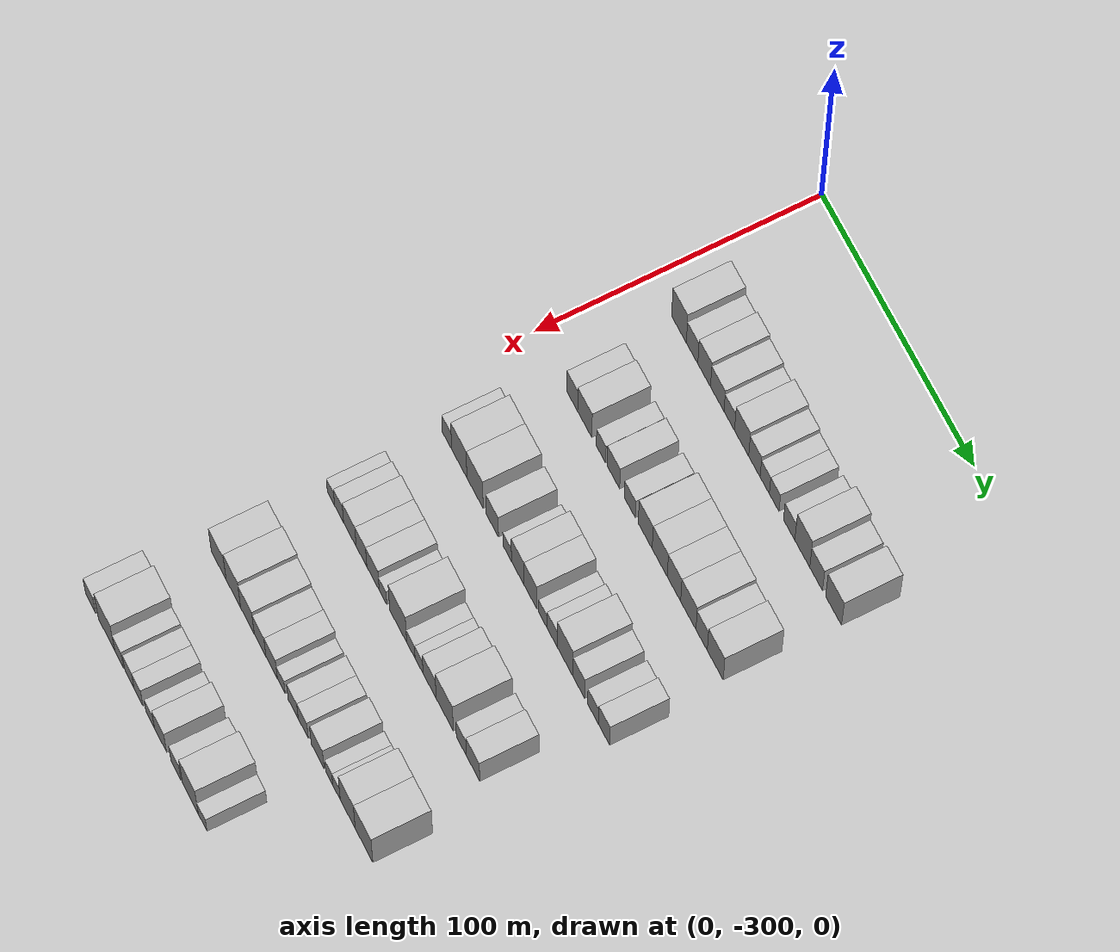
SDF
<sdf version="1.6">
 <world name="default">
  <model name="building_39">
   <static>1</static>
   <pose>50.0000 -280.5649 0 0.000000 0.000000 0.000000</pose>
   <link name="link">
    <pose>0 0 12.00 0 0 0</pose>
    <collision name="collision"><geometry><box><size>20.0000 9.8478 24.0000</size></box></geometry></collision>
    <visual name="visual">
     <cast_shadows>0</cast_shadows>
     <geometry><box><size>20.0000 9.8478 24.0000</size></box></geometry>
     <material>
      <script>
       <uri>model://HANNAS_wall/materials/scripts</uri>
       <uri>model://HANNAS_wall/materials/textures</uri>
       <name>vrc/HANNAS_wall</name>
      </script>
     </material>
    </visual>
   </link>
  </model>
  <model name="building_40">
   <static>1</static>
   <pose>50.0000 -271.7968 0 0.000000 0.000000 0.000000</pose>
   <link name="link">
    <pose>0 0 9.00 0 0 0</pose>
    <collision name="collision"><geometry><box><size>20.0000 7.6885 18.0000</size></box></geometry></collision>
    <visual name="visual">
     <cast_shadows>0</cast_shadows>
     <geometry><box><size>20.0000 7.6885 18.0000</size></box></geometry>
     <material>
      <script>
       <uri>model://HANNAS_wall/materials/scripts</uri>
       <uri>model://HANNAS_wall/materials/textures</uri>
       <name>vrc/HANNAS_wall</name>
      </script>
     </material>
    </visual>
   </link>
  </model>
  <model name="building_41">
   <static>1</static>
   <pose>50.0000 -263.7058 0 0.000000 0.000000 0.000000</pose>
   <link name="link">
    <pose>0 0 10.50 0 0 0</pose>
    <collision name="collision"><geometry><box><size>20.0000 8.4936 21.0000</size></box></geometry></collision>
    <visual name="visual">
     <cast_shadows>0</cast_shadows>
     <geometry><box><size>20.0000 8.4936 21.0000</size></box></geometry>
     <material>
      <script>
       <uri>model://HANNAS_wall/materials/scripts</uri>
       <uri>model://HANNAS_wall/materials/textures</uri>
       <name>vrc/HANNAS_wall</name>
      </script>
     </material>
    </visual>
   </link>
  </model>
  <model name="building_42">
   <static>1</static>
   <pose>50.0000 -254.9715 0 0.000000 0.000000 0.000000</pose>
   <link name="link">
    <pose>0 0 9.00 0 0 0</pose>
    <collision name="collision"><geometry><box><size>20.0000 8.9749 18.0000</size></box></geometry></collision>
    <visual name="visual">
     <cast_shadows>0</cast_shadows>
     <geometry><box><size>20.0000 8.9749 18.0000</size></box></geometry>
     <material>
      <script>
       <uri>model://HANNAS_wall/materials/scripts</uri>
       <uri>model://HANNAS_wall/materials/textures</uri>
       <name>vrc/HANNAS_wall</name>
      </script>
     </material>
    </visual>
   </link>
  </model>
  <model name="building_43">
   <static>1</static>
   <pose>50.0000 -246.9806 0 0.000000 0.000000 0.000000</pose>
   <link name="link">
    <pose>0 0 7.50 0 0 0</pose>
    <collision name="collision"><geometry><box><size>20.0000 7.0068 15.0000</size></box></geometry></collision>
    <visual name="visual">
     <cast_shadows>0</cast_shadows>
     <geometry><box><size>20.0000 7.0068 15.0000</size></box></geometry>
     <material>
      <script>
       <uri>model://HANNAS_wall/materials/scripts</uri>
       <uri>model://HANNAS_wall/materials/textures</uri>
       <name>vrc/HANNAS_wall</name>
      </script>
     </material>
    </visual>
   </link>
  </model>
  <model name="building_44">
   <static>1</static>
   <pose>50.0000 -238.7881 0 0.000000 0.000000 0.000000</pose>
   <link name="link">
    <pose>0 0 10.50 0 0 0</pose>
    <collision name="collision"><geometry><box><size>20.0000 9.3783 21.0000</size></box></geometry></collision>
    <visual name="visual">
     <cast_shadows>0</cast_shadows>
     <geometry><box><size>20.0000 9.3783 21.0000</size></box></geometry>
     <material>
      <script>
       <uri>model://HANNAS_wall/materials/scripts</uri>
       <uri>model://HANNAS_wall/materials/textures</uri>
       <name>vrc/HANNAS_wall</name>
      </script>
     </material>
    </visual>
   </link>
  </model>
  <model name="building_45">
   <static>1</static>
   <pose>50.0000 -230.3135 0 0.000000 0.000000 0.000000</pose>
   <link name="link">
    <pose>0 0 9.00 0 0 0</pose>
    <collision name="collision"><geometry><box><size>20.0000 7.5708 18.0000</size></box></geometry></collision>
    <visual name="visual">
     <cast_shadows>0</cast_shadows>
     <geometry><box><size>20.0000 7.5708 18.0000</size></box></geometry>
     <material>
      <script>
       <uri>model://HANNAS_wall/materials/scripts</uri>
       <uri>model://HANNAS_wall/materials/textures</uri>
       <name>vrc/HANNAS_wall</name>
      </script>
     </material>
    </visual>
   </link>
  </model>
  <model name="building_46">
   <static>1</static>
   <pose>50.0000 -223.4742 0 0.000000 0.000000 0.000000</pose>
   <link name="link">
    <pose>0 0 7.50 0 0 0</pose>
    <collision name="collision"><geometry><box><size>20.0000 6.1078 15.0000</size></box></geometry></collision>
    <visual name="visual">
     <cast_shadows>0</cast_shadows>
     <geometry><box><size>20.0000 6.1078 15.0000</size></box></geometry>
     <material>
      <script>
       <uri>model://HANNAS_wall/materials/scripts</uri>
       <uri>model://HANNAS_wall/materials/textures</uri>
       <name>vrc/HANNAS_wall</name>
      </script>
     </material>
    </visual>
   </link>
  </model>
  <model name="building_47">
   <static>1</static>
   <pose>50.0000 -217.2351 0 0.000000 0.000000 0.000000</pose>
   <link name="link">
    <pose>0 0 7.50 0 0 0</pose>
    <collision name="collision"><geometry><box><size>20.0000 6.3704 15.0000</size></box></geometry></collision>
    <visual name="visual">
     <cast_shadows>0</cast_shadows>
     <geometry><box><size>20.0000 6.3704 15.0000</size></box></geometry>
     <material>
      <script>
       <uri>model://HANNAS_wall/materials/scripts</uri>
       <uri>model://HANNAS_wall/materials/textures</uri>
       <name>vrc/HANNAS_wall</name>
      </script>
     </material>
    </visual>
   </link>
  </model>
  <model name="building_48">
   <static>1</static>
   <pose>50.0000 -207.3468 0 0.000000 0.000000 0.000000</pose>
   <link name="link">
    <pose>0 0 7.50 0 0 0</pose>
    <collision name="collision"><geometry><box><size>20.0000 7.4062 15.0000</size></box></geometry></collision>
    <visual name="visual">
     <cast_shadows>0</cast_shadows>
     <geometry><box><size>20.0000 7.4062 15.0000</size></box></geometry>
     <material>
      <script>
       <uri>model://HANNAS_wall/materials/scripts</uri>
       <uri>model://HANNAS_wall/materials/textures</uri>
       <name>vrc/HANNAS_wall</name>
      </script>
     </material>
    </visual>
   </link>
  </model>
  <model name="building_49">
   <static>1</static>
   <pose>50.0000 -198.7329 0 0.000000 0.000000 0.000000</pose>
   <link name="link">
    <pose>0 0 12.00 0 0 0</pose>
    <collision name="collision"><geometry><box><size>20.0000 9.8217 24.0000</size></box></geometry></collision>
    <visual name="visual">
     <cast_shadows>0</cast_shadows>
     <geometry><box><size>20.0000 9.8217 24.0000</size></box></geometry>
     <material>
      <script>
       <uri>model://HANNAS_wall/materials/scripts</uri>
       <uri>model://HANNAS_wall/materials/textures</uri>
       <name>vrc/HANNAS_wall</name>
      </script>
     </material>
    </visual>
   </link>
  </model>
  <model name="building_50">
   <static>1</static>
   <pose>50.0000 -189.6635 0 0.000000 0.000000 0.000000</pose>
   <link name="link">
    <pose>0 0 9.00 0 0 0</pose>
    <collision name="collision"><geometry><box><size>20.0000 8.3170 18.0000</size></box></geometry></collision>
    <visual name="visual">
     <cast_shadows>0</cast_shadows>
     <geometry><box><size>20.0000 8.3170 18.0000</size></box></geometry>
     <material>
      <script>
       <uri>model://HANNAS_wall/materials/scripts</uri>
       <uri>model://HANNAS_wall/materials/textures</uri>
       <name>vrc/HANNAS_wall</name>
      </script>
     </material>
    </visual>
   </link>
  </model>
  <model name="building_51">
   <static>1</static>
   <pose>50.0000 -178.3071 0 0.000000 0.000000 0.000000</pose>
   <link name="link">
    <pose>0 0 10.50 0 0 0</pose>
    <collision name="collision"><geometry><box><size>20.0000 10.3958 21.0000</size></box></geometry></collision>
    <visual name="visual">
     <cast_shadows>0</cast_shadows>
     <geometry><box><size>20.0000 10.3958 21.0000</size></box></geometry>
     <material>
      <script>
       <uri>model://HANNAS_wall/materials/scripts</uri>
       <uri>model://HANNAS_wall/materials/textures</uri>
       <name>vrc/HANNAS_wall</name>
      </script>
     </material>
    </visual>
   </link>
  </model>
  <model name="building_174">
   <static>1</static>
   <pose>90.0000 -274.4866 0 0.000000 0.000000 0.000000</pose>
   <link name="link">
    <pose>0 0 9.00 0 0 0</pose>
    <collision name="collision"><geometry><box><size>20.0000 7.3167 18.0000</size></box></geometry></collision>
    <visual name="visual">
     <cast_shadows>0</cast_shadows>
     <geometry><box><size>20.0000 7.3167 18.0000</size></box></geometry>
     <material>
      <script>
       <uri>model://HANNAS_wall/materials/scripts</uri>
       <uri>model://HANNAS_wall/materials/textures</uri>
       <name>vrc/HANNAS_wall</name>
      </script>
     </material>
    </visual>
   </link>
  </model>
  <model name="building_175">
   <static>1</static>
   <pose>90.0000 -266.0101 0 0.000000 0.000000 0.000000</pose>
   <link name="link">
    <pose>0 0 10.50 0 0 0</pose>
    <collision name="collision"><geometry><box><size>20.0000 9.6361 21.0000</size></box></geometry></collision>
    <visual name="visual">
     <cast_shadows>0</cast_shadows>
     <geometry><box><size>20.0000 9.6361 21.0000</size></box></geometry>
     <material>
      <script>
       <uri>model://HANNAS_wall/materials/scripts</uri>
       <uri>model://HANNAS_wall/materials/textures</uri>
       <name>vrc/HANNAS_wall</name>
      </script>
     </material>
    </visual>
   </link>
  </model>
  <model name="building_176">
   <static>1</static>
   <pose>90.0000 -255.0600 0 0.000000 0.000000 0.000000</pose>
   <link name="link">
    <pose>0 0 7.50 0 0 0</pose>
    <collision name="collision"><geometry><box><size>20.0000 6.2642 15.0000</size></box></geometry></collision>
    <visual name="visual">
     <cast_shadows>0</cast_shadows>
     <geometry><box><size>20.0000 6.2642 15.0000</size></box></geometry>
     <material>
      <script>
       <uri>model://HANNAS_wall/materials/scripts</uri>
       <uri>model://HANNAS_wall/materials/textures</uri>
       <name>vrc/HANNAS_wall</name>
      </script>
     </material>
    </visual>
   </link>
  </model>
  <model name="building_177">
   <static>1</static>
   <pose>90.0000 -246.7396 0 0.000000 0.000000 0.000000</pose>
   <link name="link">
    <pose>0 0 9.00 0 0 0</pose>
    <collision name="collision"><geometry><box><size>20.0000 8.3766 18.0000</size></box></geometry></collision>
    <visual name="visual">
     <cast_shadows>0</cast_shadows>
     <geometry><box><size>20.0000 8.3766 18.0000</size></box></geometry>
     <material>
      <script>
       <uri>model://HANNAS_wall/materials/scripts</uri>
       <uri>model://HANNAS_wall/materials/textures</uri>
       <name>vrc/HANNAS_wall</name>
      </script>
     </material>
    </visual>
   </link>
  </model>
  <model name="building_178">
   <static>1</static>
   <pose>90.0000 -235.8291 0 0.000000 0.000000 0.000000</pose>
   <link name="link">
    <pose>0 0 7.50 0 0 0</pose>
    <collision name="collision"><geometry><box><size>20.0000 7.4444 15.0000</size></box></geometry></collision>
    <visual name="visual">
     <cast_shadows>0</cast_shadows>
     <geometry><box><size>20.0000 7.4444 15.0000</size></box></geometry>
     <material>
      <script>
       <uri>model://HANNAS_wall/materials/scripts</uri>
       <uri>model://HANNAS_wall/materials/textures</uri>
       <name>vrc/HANNAS_wall</name>
      </script>
     </material>
    </visual>
   </link>
  </model>
  <model name="building_179">
   <static>1</static>
   <pose>90.0000 -225.4730 0 0.000000 0.000000 0.000000</pose>
   <link name="link">
    <pose>0 0 10.50 0 0 0</pose>
    <collision name="collision"><geometry><box><size>20.0000 9.2677 21.0000</size></box></geometry></collision>
    <visual name="visual">
     <cast_shadows>0</cast_shadows>
     <geometry><box><size>20.0000 9.2677 21.0000</size></box></geometry>
     <material>
      <script>
       <uri>model://HANNAS_wall/materials/scripts</uri>
       <uri>model://HANNAS_wall/materials/textures</uri>
       <name>vrc/HANNAS_wall</name>
      </script>
     </material>
    </visual>
   </link>
  </model>
  <model name="building_180">
   <static>1</static>
   <pose>90.0000 -215.8219 0 0.000000 0.000000 0.000000</pose>
   <link name="link">
    <pose>0 0 10.50 0 0 0</pose>
    <collision name="collision"><geometry><box><size>20.0000 10.0346 21.0000</size></box></geometry></collision>
    <visual name="visual">
     <cast_shadows>0</cast_shadows>
     <geometry><box><size>20.0000 10.0346 21.0000</size></box></geometry>
     <material>
      <script>
       <uri>model://HANNAS_wall/materials/scripts</uri>
       <uri>model://HANNAS_wall/materials/textures</uri>
       <name>vrc/HANNAS_wall</name>
      </script>
     </material>
    </visual>
   </link>
  </model>
  <model name="building_181">
   <static>1</static>
   <pose>90.0000 -206.3637 0 0.000000 0.000000 0.000000</pose>
   <link name="link">
    <pose>0 0 10.50 0 0 0</pose>
    <collision name="collision"><geometry><box><size>20.0000 8.8818 21.0000</size></box></geometry></collision>
    <visual name="visual">
     <cast_shadows>0</cast_shadows>
     <geometry><box><size>20.0000 8.8818 21.0000</size></box></geometry>
     <material>
      <script>
       <uri>model://HANNAS_wall/materials/scripts</uri>
       <uri>model://HANNAS_wall/materials/textures</uri>
       <name>vrc/HANNAS_wall</name>
      </script>
     </material>
    </visual>
   </link>
  </model>
  <model name="building_182">
   <static>1</static>
   <pose>90.0000 -196.8676 0 0.000000 0.000000 0.000000</pose>
   <link name="link">
    <pose>0 0 10.50 0 0 0</pose>
    <collision name="collision"><geometry><box><size>20.0000 10.1104 21.0000</size></box></geometry></collision>
    <visual name="visual">
     <cast_shadows>0</cast_shadows>
     <geometry><box><size>20.0000 10.1104 21.0000</size></box></geometry>
     <material>
      <script>
       <uri>model://HANNAS_wall/materials/scripts</uri>
       <uri>model://HANNAS_wall/materials/textures</uri>
       <name>vrc/HANNAS_wall</name>
      </script>
     </material>
    </visual>
   </link>
  </model>
  <model name="building_183">
   <static>1</static>
   <pose>90.0000 -188.0851 0 0.000000 0.000000 0.000000</pose>
   <link name="link">
    <pose>0 0 9.00 0 0 0</pose>
    <collision name="collision"><geometry><box><size>20.0000 7.4547 18.0000</size></box></geometry></collision>
    <visual name="visual">
     <cast_shadows>0</cast_shadows>
     <geometry><box><size>20.0000 7.4547 18.0000</size></box></geometry>
     <material>
      <script>
       <uri>model://HANNAS_wall/materials/scripts</uri>
       <uri>model://HANNAS_wall/materials/textures</uri>
       <name>vrc/HANNAS_wall</name>
      </script>
     </material>
    </visual>
   </link>
  </model>
  <model name="building_184">
   <static>1</static>
   <pose>90.0000 -179.1207 0 0.000000 0.000000 0.000000</pose>
   <link name="link">
    <pose>0 0 10.50 0 0 0</pose>
    <collision name="collision"><geometry><box><size>20.0000 10.4742 21.0000</size></box></geometry></collision>
    <visual name="visual">
     <cast_shadows>0</cast_shadows>
     <geometry><box><size>20.0000 10.4742 21.0000</size></box></geometry>
     <material>
      <script>
       <uri>model://HANNAS_wall/materials/scripts</uri>
       <uri>model://HANNAS_wall/materials/textures</uri>
       <name>vrc/HANNAS_wall</name>
      </script>
     </material>
    </visual>
   </link>
  </model>
  <model name="building_301">
   <static>1</static>
   <pose>130.0000 -280.3626 0 0.000000 0.000000 0.000000</pose>
   <link name="link">
    <pose>0 0 7.50 0 0 0</pose>
    <collision name="collision"><geometry><box><size>20.0000 6.3171 15.0000</size></box></geometry></collision>
    <visual name="visual">
     <cast_shadows>0</cast_shadows>
     <geometry><box><size>20.0000 6.3171 15.0000</size></box></geometry>
     <material>
      <script>
       <uri>model://HANNAS_wall/materials/scripts</uri>
       <uri>model://HANNAS_wall/materials/textures</uri>
       <name>vrc/HANNAS_wall</name>
      </script>
     </material>
    </visual>
   </link>
  </model>
  <model name="building_302">
   <static>1</static>
   <pose>130.0000 -272.0111 0 0.000000 0.000000 0.000000</pose>
   <link name="link">
    <pose>0 0 12.00 0 0 0</pose>
    <collision name="collision"><geometry><box><size>20.0000 10.3860 24.0000</size></box></geometry></collision>
    <visual name="visual">
     <cast_shadows>0</cast_shadows>
     <geometry><box><size>20.0000 10.3860 24.0000</size></box></geometry>
     <material>
      <script>
       <uri>model://HANNAS_wall/materials/scripts</uri>
       <uri>model://HANNAS_wall/materials/textures</uri>
       <name>vrc/HANNAS_wall</name>
      </script>
     </material>
    </visual>
   </link>
  </model>
  <model name="building_303">
   <static>1</static>
   <pose>130.0000 -261.2895 0 0.000000 0.000000 0.000000</pose>
   <link name="link">
    <pose>0 0 12.00 0 0 0</pose>
    <collision name="collision"><geometry><box><size>20.0000 11.0572 24.0000</size></box></geometry></collision>
    <visual name="visual">
     <cast_shadows>0</cast_shadows>
     <geometry><box><size>20.0000 11.0572 24.0000</size></box></geometry>
     <material>
      <script>
       <uri>model://HANNAS_wall/materials/scripts</uri>
       <uri>model://HANNAS_wall/materials/textures</uri>
       <name>vrc/HANNAS_wall</name>
      </script>
     </material>
    </visual>
   </link>
  </model>
  <model name="building_304">
   <static>1</static>
   <pose>130.0000 -249.5803 0 0.000000 0.000000 0.000000</pose>
   <link name="link">
    <pose>0 0 9.00 0 0 0</pose>
    <collision name="collision"><geometry><box><size>20.0000 8.3613 18.0000</size></box></geometry></collision>
    <visual name="visual">
     <cast_shadows>0</cast_shadows>
     <geometry><box><size>20.0000 8.3613 18.0000</size></box></geometry>
     <material>
      <script>
       <uri>model://HANNAS_wall/materials/scripts</uri>
       <uri>model://HANNAS_wall/materials/textures</uri>
       <name>vrc/HANNAS_wall</name>
      </script>
     </material>
    </visual>
   </link>
  </model>
  <model name="building_305">
   <static>1</static>
   <pose>130.0000 -239.5220 0 0.000000 0.000000 0.000000</pose>
   <link name="link">
    <pose>0 0 6.00 0 0 0</pose>
    <collision name="collision"><geometry><box><size>20.0000 5.7553 12.0000</size></box></geometry></collision>
    <visual name="visual">
     <cast_shadows>0</cast_shadows>
     <geometry><box><size>20.0000 5.7553 12.0000</size></box></geometry>
     <material>
      <script>
       <uri>model://HANNAS_wall/materials/scripts</uri>
       <uri>model://HANNAS_wall/materials/textures</uri>
       <name>vrc/HANNAS_wall</name>
      </script>
     </material>
    </visual>
   </link>
  </model>
  <model name="building_306">
   <static>1</static>
   <pose>130.0000 -232.4373 0 0.000000 0.000000 0.000000</pose>
   <link name="link">
    <pose>0 0 10.50 0 0 0</pose>
    <collision name="collision"><geometry><box><size>20.0000 8.4140 21.0000</size></box></geometry></collision>
    <visual name="visual">
     <cast_shadows>0</cast_shadows>
     <geometry><box><size>20.0000 8.4140 21.0000</size></box></geometry>
     <material>
      <script>
       <uri>model://HANNAS_wall/materials/scripts</uri>
       <uri>model://HANNAS_wall/materials/textures</uri>
       <name>vrc/HANNAS_wall</name>
      </script>
     </material>
    </visual>
   </link>
  </model>
  <model name="building_307">
   <static>1</static>
   <pose>130.0000 -223.8336 0 0.000000 0.000000 0.000000</pose>
   <link name="link">
    <pose>0 0 10.50 0 0 0</pose>
    <collision name="collision"><geometry><box><size>20.0000 8.7934 21.0000</size></box></geometry></collision>
    <visual name="visual">
     <cast_shadows>0</cast_shadows>
     <geometry><box><size>20.0000 8.7934 21.0000</size></box></geometry>
     <material>
      <script>
       <uri>model://HANNAS_wall/materials/scripts</uri>
       <uri>model://HANNAS_wall/materials/textures</uri>
       <name>vrc/HANNAS_wall</name>
      </script>
     </material>
    </visual>
   </link>
  </model>
  <model name="building_308">
   <static>1</static>
   <pose>130.0000 -215.6050 0 0.000000 0.000000 0.000000</pose>
   <link name="link">
    <pose>0 0 6.00 0 0 0</pose>
    <collision name="collision"><geometry><box><size>20.0000 5.6639 12.0000</size></box></geometry></collision>
    <visual name="visual">
     <cast_shadows>0</cast_shadows>
     <geometry><box><size>20.0000 5.6639 12.0000</size></box></geometry>
     <material>
      <script>
       <uri>model://HANNAS_wall/materials/scripts</uri>
       <uri>model://HANNAS_wall/materials/textures</uri>
       <name>vrc/HANNAS_wall</name>
      </script>
     </material>
    </visual>
   </link>
  </model>
  <model name="building_309">
   <static>1</static>
   <pose>130.0000 -209.3810 0 0.000000 0.000000 0.000000</pose>
   <link name="link">
    <pose>0 0 7.50 0 0 0</pose>
    <collision name="collision"><geometry><box><size>20.0000 6.7841 15.0000</size></box></geometry></collision>
    <visual name="visual">
     <cast_shadows>0</cast_shadows>
     <geometry><box><size>20.0000 6.7841 15.0000</size></box></geometry>
     <material>
      <script>
       <uri>model://HANNAS_wall/materials/scripts</uri>
       <uri>model://HANNAS_wall/materials/textures</uri>
       <name>vrc/HANNAS_wall</name>
      </script>
     </material>
    </visual>
   </link>
  </model>
  <model name="building_310">
   <static>1</static>
   <pose>130.0000 -200.7105 0 0.000000 0.000000 0.000000</pose>
   <link name="link">
    <pose>0 0 12.00 0 0 0</pose>
    <collision name="collision"><geometry><box><size>20.0000 10.5569 24.0000</size></box></geometry></collision>
    <visual name="visual">
     <cast_shadows>0</cast_shadows>
     <geometry><box><size>20.0000 10.5569 24.0000</size></box></geometry>
     <material>
      <script>
       <uri>model://HANNAS_wall/materials/scripts</uri>
       <uri>model://HANNAS_wall/materials/textures</uri>
       <name>vrc/HANNAS_wall</name>
      </script>
     </material>
    </visual>
   </link>
  </model>
  <model name="building_311">
   <static>1</static>
   <pose>130.0000 -191.5314 0 0.000000 0.000000 0.000000</pose>
   <link name="link">
    <pose>0 0 9.00 0 0 0</pose>
    <collision name="collision"><geometry><box><size>20.0000 7.8012 18.0000</size></box></geometry></collision>
    <visual name="visual">
     <cast_shadows>0</cast_shadows>
     <geometry><box><size>20.0000 7.8012 18.0000</size></box></geometry>
     <material>
      <script>
       <uri>model://HANNAS_wall/materials/scripts</uri>
       <uri>model://HANNAS_wall/materials/textures</uri>
       <name>vrc/HANNAS_wall</name>
      </script>
     </material>
    </visual>
   </link>
  </model>
  <model name="building_312">
   <static>1</static>
   <pose>130.0000 -182.0263 0 0.000000 0.000000 0.000000</pose>
   <link name="link">
    <pose>0 0 7.50 0 0 0</pose>
    <collision name="collision"><geometry><box><size>20.0000 7.2091 15.0000</size></box></geometry></collision>
    <visual name="visual">
     <cast_shadows>0</cast_shadows>
     <geometry><box><size>20.0000 7.2091 15.0000</size></box></geometry>
     <material>
      <script>
       <uri>model://HANNAS_wall/materials/scripts</uri>
       <uri>model://HANNAS_wall/materials/textures</uri>
       <name>vrc/HANNAS_wall</name>
      </script>
     </material>
    </visual>
   </link>
  </model>
  <model name="building_313">
   <static>1</static>
   <pose>130.0000 -174.7241 0 0.000000 0.000000 0.000000</pose>
   <link name="link">
    <pose>0 0 9.00 0 0 0</pose>
    <collision name="collision"><geometry><box><size>20.0000 7.3952 18.0000</size></box></geometry></collision>
    <visual name="visual">
     <cast_shadows>0</cast_shadows>
     <geometry><box><size>20.0000 7.3952 18.0000</size></box></geometry>
     <material>
      <script>
       <uri>model://HANNAS_wall/materials/scripts</uri>
       <uri>model://HANNAS_wall/materials/textures</uri>
       <name>vrc/HANNAS_wall</name>
      </script>
     </material>
    </visual>
   </link>
  </model>
  <model name="building_432">
   <static>1</static>
   <pose>170.0000 -279.5741 0 0.000000 0.000000 0.000000</pose>
   <link name="link">
    <pose>0 0 6.00 0 0 0</pose>
    <collision name="collision"><geometry><box><size>20.0000 4.9871 12.0000</size></box></geometry></collision>
    <visual name="visual">
     <cast_shadows>0</cast_shadows>
     <geometry><box><size>20.0000 4.9871 12.0000</size></box></geometry>
     <material>
      <script>
       <uri>model://HANNAS_wall/materials/scripts</uri>
       <uri>model://HANNAS_wall/materials/textures</uri>
       <name>vrc/HANNAS_wall</name>
      </script>
     </material>
    </visual>
   </link>
  </model>
  <model name="building_433">
   <static>1</static>
   <pose>170.0000 -273.9767 0 0.000000 0.000000 0.000000</pose>
   <link name="link">
    <pose>0 0 7.50 0 0 0</pose>
    <collision name="collision"><geometry><box><size>20.0000 6.2076 15.0000</size></box></geometry></collision>
    <visual name="visual">
     <cast_shadows>0</cast_shadows>
     <geometry><box><size>20.0000 6.2076 15.0000</size></box></geometry>
     <material>
      <script>
       <uri>model://HANNAS_wall/materials/scripts</uri>
       <uri>model://HANNAS_wall/materials/textures</uri>
       <name>vrc/HANNAS_wall</name>
      </script>
     </material>
    </visual>
   </link>
  </model>
  <model name="building_434">
   <static>1</static>
   <pose>170.0000 -266.5755 0 0.000000 0.000000 0.000000</pose>
   <link name="link">
    <pose>0 0 9.00 0 0 0</pose>
    <collision name="collision"><geometry><box><size>20.0000 8.5947 18.0000</size></box></geometry></collision>
    <visual name="visual">
     <cast_shadows>0</cast_shadows>
     <geometry><box><size>20.0000 8.5947 18.0000</size></box></geometry>
     <material>
      <script>
       <uri>model://HANNAS_wall/materials/scripts</uri>
       <uri>model://HANNAS_wall/materials/textures</uri>
       <name>vrc/HANNAS_wall</name>
      </script>
     </material>
    </visual>
   </link>
  </model>
  <model name="building_435">
   <static>1</static>
   <pose>170.0000 -258.6172 0 0.000000 0.000000 0.000000</pose>
   <link name="link">
    <pose>0 0 9.00 0 0 0</pose>
    <collision name="collision"><geometry><box><size>20.0000 7.3220 18.0000</size></box></geometry></collision>
    <visual name="visual">
     <cast_shadows>0</cast_shadows>
     <geometry><box><size>20.0000 7.3220 18.0000</size></box></geometry>
     <material>
      <script>
       <uri>model://HANNAS_wall/materials/scripts</uri>
       <uri>model://HANNAS_wall/materials/textures</uri>
       <name>vrc/HANNAS_wall</name>
      </script>
     </material>
    </visual>
   </link>
  </model>
  <model name="building_436">
   <static>1</static>
   <pose>170.0000 -250.7538 0 0.000000 0.000000 0.000000</pose>
   <link name="link">
    <pose>0 0 9.00 0 0 0</pose>
    <collision name="collision"><geometry><box><size>20.0000 8.4049 18.0000</size></box></geometry></collision>
    <visual name="visual">
     <cast_shadows>0</cast_shadows>
     <geometry><box><size>20.0000 8.4049 18.0000</size></box></geometry>
     <material>
      <script>
       <uri>model://HANNAS_wall/materials/scripts</uri>
       <uri>model://HANNAS_wall/materials/textures</uri>
       <name>vrc/HANNAS_wall</name>
      </script>
     </material>
    </visual>
   </link>
  </model>
  <model name="building_437">
   <static>1</static>
   <pose>170.0000 -243.9615 0 0.000000 0.000000 0.000000</pose>
   <link name="link">
    <pose>0 0 6.00 0 0 0</pose>
    <collision name="collision"><geometry><box><size>20.0000 5.1795 12.0000</size></box></geometry></collision>
    <visual name="visual">
     <cast_shadows>0</cast_shadows>
     <geometry><box><size>20.0000 5.1795 12.0000</size></box></geometry>
     <material>
      <script>
       <uri>model://HANNAS_wall/materials/scripts</uri>
       <uri>model://HANNAS_wall/materials/textures</uri>
       <name>vrc/HANNAS_wall</name>
      </script>
     </material>
    </visual>
   </link>
  </model>
  <model name="building_438">
   <static>1</static>
   <pose>170.0000 -233.5888 0 0.000000 0.000000 0.000000</pose>
   <link name="link">
    <pose>0 0 12.00 0 0 0</pose>
    <collision name="collision"><geometry><box><size>20.0000 11.5660 24.0000</size></box></geometry></collision>
    <visual name="visual">
     <cast_shadows>0</cast_shadows>
     <geometry><box><size>20.0000 11.5660 24.0000</size></box></geometry>
     <material>
      <script>
       <uri>model://HANNAS_wall/materials/scripts</uri>
       <uri>model://HANNAS_wall/materials/textures</uri>
       <name>vrc/HANNAS_wall</name>
      </script>
     </material>
    </visual>
   </link>
  </model>
  <model name="building_439">
   <static>1</static>
   <pose>170.0000 -225.0015 0 0.000000 0.000000 0.000000</pose>
   <link name="link">
    <pose>0 0 6.00 0 0 0</pose>
    <collision name="collision"><geometry><box><size>20.0000 5.6086 12.0000</size></box></geometry></collision>
    <visual name="visual">
     <cast_shadows>0</cast_shadows>
     <geometry><box><size>20.0000 5.6086 12.0000</size></box></geometry>
     <material>
      <script>
       <uri>model://HANNAS_wall/materials/scripts</uri>
       <uri>model://HANNAS_wall/materials/textures</uri>
       <name>vrc/HANNAS_wall</name>
      </script>
     </material>
    </visual>
   </link>
  </model>
  <model name="building_440">
   <static>1</static>
   <pose>170.0000 -219.4689 0 0.000000 0.000000 0.000000</pose>
   <link name="link">
    <pose>0 0 6.00 0 0 0</pose>
    <collision name="collision"><geometry><box><size>20.0000 5.4568 12.0000</size></box></geometry></collision>
    <visual name="visual">
     <cast_shadows>0</cast_shadows>
     <geometry><box><size>20.0000 5.4568 12.0000</size></box></geometry>
     <material>
      <script>
       <uri>model://HANNAS_wall/materials/scripts</uri>
       <uri>model://HANNAS_wall/materials/textures</uri>
       <name>vrc/HANNAS_wall</name>
      </script>
     </material>
    </visual>
   </link>
  </model>
  <model name="building_441">
   <static>1</static>
   <pose>170.0000 -212.3283 0 0.000000 0.000000 0.000000</pose>
   <link name="link">
    <pose>0 0 9.00 0 0 0</pose>
    <collision name="collision"><geometry><box><size>20.0000 8.8242 18.0000</size></box></geometry></collision>
    <visual name="visual">
     <cast_shadows>0</cast_shadows>
     <geometry><box><size>20.0000 8.8242 18.0000</size></box></geometry>
     <material>
      <script>
       <uri>model://HANNAS_wall/materials/scripts</uri>
       <uri>model://HANNAS_wall/materials/textures</uri>
       <name>vrc/HANNAS_wall</name>
      </script>
     </material>
    </visual>
   </link>
  </model>
  <model name="building_442">
   <static>1</static>
   <pose>170.0000 -202.1367 0 0.000000 0.000000 0.000000</pose>
   <link name="link">
    <pose>0 0 12.00 0 0 0</pose>
    <collision name="collision"><geometry><box><size>20.0000 11.5591 24.0000</size></box></geometry></collision>
    <visual name="visual">
     <cast_shadows>0</cast_shadows>
     <geometry><box><size>20.0000 11.5591 24.0000</size></box></geometry>
     <material>
      <script>
       <uri>model://HANNAS_wall/materials/scripts</uri>
       <uri>model://HANNAS_wall/materials/textures</uri>
       <name>vrc/HANNAS_wall</name>
      </script>
     </material>
    </visual>
   </link>
  </model>
  <model name="building_443">
   <static>1</static>
   <pose>170.0000 -190.9616 0 0.000000 0.000000 0.000000</pose>
   <link name="link">
    <pose>0 0 7.50 0 0 0</pose>
    <collision name="collision"><geometry><box><size>20.0000 6.7911 15.0000</size></box></geometry></collision>
    <visual name="visual">
     <cast_shadows>0</cast_shadows>
     <geometry><box><size>20.0000 6.7911 15.0000</size></box></geometry>
     <material>
      <script>
       <uri>model://HANNAS_wall/materials/scripts</uri>
       <uri>model://HANNAS_wall/materials/textures</uri>
       <name>vrc/HANNAS_wall</name>
      </script>
     </material>
    </visual>
   </link>
  </model>
  <model name="building_444">
   <static>1</static>
   <pose>170.0000 -183.1038 0 0.000000 0.000000 0.000000</pose>
   <link name="link">
    <pose>0 0 9.00 0 0 0</pose>
    <collision name="collision"><geometry><box><size>20.0000 8.9245 18.0000</size></box></geometry></collision>
    <visual name="visual">
     <cast_shadows>0</cast_shadows>
     <geometry><box><size>20.0000 8.9245 18.0000</size></box></geometry>
     <material>
      <script>
       <uri>model://HANNAS_wall/materials/scripts</uri>
       <uri>model://HANNAS_wall/materials/textures</uri>
       <name>vrc/HANNAS_wall</name>
      </script>
     </material>
    </visual>
   </link>
  </model>
  <model name="building_577">
   <static>1</static>
   <pose>210.0000 -275.6855 0 0.000000 0.000000 0.000000</pose>
   <link name="link">
    <pose>0 0 10.50 0 0 0</pose>
    <collision name="collision"><geometry><box><size>20.0000 10.3323 21.0000</size></box></geometry></collision>
    <visual name="visual">
     <cast_shadows>0</cast_shadows>
     <geometry><box><size>20.0000 10.3323 21.0000</size></box></geometry>
     <material>
      <script>
       <uri>model://HANNAS_wall/materials/scripts</uri>
       <uri>model://HANNAS_wall/materials/textures</uri>
       <name>vrc/HANNAS_wall</name>
      </script>
     </material>
    </visual>
   </link>
  </model>
  <model name="building_578">
   <static>1</static>
   <pose>210.0000 -265.5103 0 0.000000 0.000000 0.000000</pose>
   <link name="link">
    <pose>0 0 12.00 0 0 0</pose>
    <collision name="collision"><geometry><box><size>20.0000 10.0180 24.0000</size></box></geometry></collision>
    <visual name="visual">
     <cast_shadows>0</cast_shadows>
     <geometry><box><size>20.0000 10.0180 24.0000</size></box></geometry>
     <material>
      <script>
       <uri>model://HANNAS_wall/materials/scripts</uri>
       <uri>model://HANNAS_wall/materials/textures</uri>
       <name>vrc/HANNAS_wall</name>
      </script>
     </material>
    </visual>
   </link>
  </model>
  <model name="building_579">
   <static>1</static>
   <pose>210.0000 -255.7957 0 0.000000 0.000000 0.000000</pose>
   <link name="link">
    <pose>0 0 10.50 0 0 0</pose>
    <collision name="collision"><geometry><box><size>20.0000 9.4111 21.0000</size></box></geometry></collision>
    <visual name="visual">
     <cast_shadows>0</cast_shadows>
     <geometry><box><size>20.0000 9.4111 21.0000</size></box></geometry>
     <material>
      <script>
       <uri>model://HANNAS_wall/materials/scripts</uri>
       <uri>model://HANNAS_wall/materials/textures</uri>
       <name>vrc/HANNAS_wall</name>
      </script>
     </material>
    </visual>
   </link>
  </model>
  <model name="building_580">
   <static>1</static>
   <pose>210.0000 -247.0757 0 0.000000 0.000000 0.000000</pose>
   <link name="link">
    <pose>0 0 9.00 0 0 0</pose>
    <collision name="collision"><geometry><box><size>20.0000 8.0290 18.0000</size></box></geometry></collision>
    <visual name="visual">
     <cast_shadows>0</cast_shadows>
     <geometry><box><size>20.0000 8.0290 18.0000</size></box></geometry>
     <material>
      <script>
       <uri>model://HANNAS_wall/materials/scripts</uri>
       <uri>model://HANNAS_wall/materials/textures</uri>
       <name>vrc/HANNAS_wall</name>
      </script>
     </material>
    </visual>
   </link>
  </model>
  <model name="building_581">
   <static>1</static>
   <pose>210.0000 -239.1334 0 0.000000 0.000000 0.000000</pose>
   <link name="link">
    <pose>0 0 9.00 0 0 0</pose>
    <collision name="collision"><geometry><box><size>20.0000 7.8556 18.0000</size></box></geometry></collision>
    <visual name="visual">
     <cast_shadows>0</cast_shadows>
     <geometry><box><size>20.0000 7.8556 18.0000</size></box></geometry>
     <material>
      <script>
       <uri>model://HANNAS_wall/materials/scripts</uri>
       <uri>model://HANNAS_wall/materials/textures</uri>
       <name>vrc/HANNAS_wall</name>
      </script>
     </material>
    </visual>
   </link>
  </model>
  <model name="building_582">
   <static>1</static>
   <pose>210.0000 -232.5424 0 0.000000 0.000000 0.000000</pose>
   <link name="link">
    <pose>0 0 6.00 0 0 0</pose>
    <collision name="collision"><geometry><box><size>20.0000 5.3264 12.0000</size></box></geometry></collision>
    <visual name="visual">
     <cast_shadows>0</cast_shadows>
     <geometry><box><size>20.0000 5.3264 12.0000</size></box></geometry>
     <material>
      <script>
       <uri>model://HANNAS_wall/materials/scripts</uri>
       <uri>model://HANNAS_wall/materials/textures</uri>
       <name>vrc/HANNAS_wall</name>
      </script>
     </material>
    </visual>
   </link>
  </model>
  <model name="building_583">
   <static>1</static>
   <pose>210.0000 -224.4202 0 0.000000 0.000000 0.000000</pose>
   <link name="link">
    <pose>0 0 7.50 0 0 0</pose>
    <collision name="collision"><geometry><box><size>20.0000 6.9180 15.0000</size></box></geometry></collision>
    <visual name="visual">
     <cast_shadows>0</cast_shadows>
     <geometry><box><size>20.0000 6.9180 15.0000</size></box></geometry>
     <material>
      <script>
       <uri>model://HANNAS_wall/materials/scripts</uri>
       <uri>model://HANNAS_wall/materials/textures</uri>
       <name>vrc/HANNAS_wall</name>
      </script>
     </material>
    </visual>
   </link>
  </model>
  <model name="building_584">
   <static>1</static>
   <pose>210.0000 -217.5259 0 0.000000 0.000000 0.000000</pose>
   <link name="link">
    <pose>0 0 7.50 0 0 0</pose>
    <collision name="collision"><geometry><box><size>20.0000 6.8706 15.0000</size></box></geometry></collision>
    <visual name="visual">
     <cast_shadows>0</cast_shadows>
     <geometry><box><size>20.0000 6.8706 15.0000</size></box></geometry>
     <material>
      <script>
       <uri>model://HANNAS_wall/materials/scripts</uri>
       <uri>model://HANNAS_wall/materials/textures</uri>
       <name>vrc/HANNAS_wall</name>
      </script>
     </material>
    </visual>
   </link>
  </model>
  <model name="building_585">
   <static>1</static>
   <pose>210.0000 -207.6883 0 0.000000 0.000000 0.000000</pose>
   <link name="link">
    <pose>0 0 9.00 0 0 0</pose>
    <collision name="collision"><geometry><box><size>20.0000 8.8047 18.0000</size></box></geometry></collision>
    <visual name="visual">
     <cast_shadows>0</cast_shadows>
     <geometry><box><size>20.0000 8.8047 18.0000</size></box></geometry>
     <material>
      <script>
       <uri>model://HANNAS_wall/materials/scripts</uri>
       <uri>model://HANNAS_wall/materials/textures</uri>
       <name>vrc/HANNAS_wall</name>
      </script>
     </material>
    </visual>
   </link>
  </model>
  <model name="building_586">
   <static>1</static>
   <pose>210.0000 -199.8563 0 0.000000 0.000000 0.000000</pose>
   <link name="link">
    <pose>0 0 6.00 0 0 0</pose>
    <collision name="collision"><geometry><box><size>20.0000 4.8593 12.0000</size></box></geometry></collision>
    <visual name="visual">
     <cast_shadows>0</cast_shadows>
     <geometry><box><size>20.0000 4.8593 12.0000</size></box></geometry>
     <material>
      <script>
       <uri>model://HANNAS_wall/materials/scripts</uri>
       <uri>model://HANNAS_wall/materials/textures</uri>
       <name>vrc/HANNAS_wall</name>
      </script>
     </material>
    </visual>
   </link>
  </model>
  <model name="building_587">
   <static>1</static>
   <pose>210.0000 -194.8977 0 0.000000 0.000000 0.000000</pose>
   <link name="link">
    <pose>0 0 6.00 0 0 0</pose>
    <collision name="collision"><geometry><box><size>20.0000 5.0579 12.0000</size></box></geometry></collision>
    <visual name="visual">
     <cast_shadows>0</cast_shadows>
     <geometry><box><size>20.0000 5.0579 12.0000</size></box></geometry>
     <material>
      <script>
       <uri>model://HANNAS_wall/materials/scripts</uri>
       <uri>model://HANNAS_wall/materials/textures</uri>
       <name>vrc/HANNAS_wall</name>
      </script>
     </material>
    </visual>
   </link>
  </model>
  <model name="building_588">
   <static>1</static>
   <pose>210.0000 -187.3231 0 0.000000 0.000000 0.000000</pose>
   <link name="link">
    <pose>0 0 12.00 0 0 0</pose>
    <collision name="collision"><geometry><box><size>20.0000 10.0911 24.0000</size></box></geometry></collision>
    <visual name="visual">
     <cast_shadows>0</cast_shadows>
     <geometry><box><size>20.0000 10.0911 24.0000</size></box></geometry>
     <material>
      <script>
       <uri>model://HANNAS_wall/materials/scripts</uri>
       <uri>model://HANNAS_wall/materials/textures</uri>
       <name>vrc/HANNAS_wall</name>
      </script>
     </material>
    </visual>
   </link>
  </model>
  <model name="building_589">
   <static>1</static>
   <pose>210.0000 -176.3465 0 0.000000 0.000000 0.000000</pose>
   <link name="link">
    <pose>0 0 12.00 0 0 0</pose>
    <collision name="collision"><geometry><box><size>20.0000 11.8621 24.0000</size></box></geometry></collision>
    <visual name="visual">
     <cast_shadows>0</cast_shadows>
     <geometry><box><size>20.0000 11.8621 24.0000</size></box></geometry>
     <material>
      <script>
       <uri>model://HANNAS_wall/materials/scripts</uri>
       <uri>model://HANNAS_wall/materials/textures</uri>
       <name>vrc/HANNAS_wall</name>
      </script>
     </material>
    </visual>
   </link>
  </model>
  <model name="building_715">
   <static>1</static>
   <pose>250.0000 -282.2657 0 0.000000 0.000000 0.000000</pose>
   <link name="link">
    <pose>0 0 7.50 0 0 0</pose>
    <collision name="collision"><geometry><box><size>20.0000 6.8573 15.0000</size></box></geometry></collision>
    <visual name="visual">
     <cast_shadows>0</cast_shadows>
     <geometry><box><size>20.0000 6.8573 15.0000</size></box></geometry>
     <material>
      <script>
       <uri>model://HANNAS_wall/materials/scripts</uri>
       <uri>model://HANNAS_wall/materials/textures</uri>
       <name>vrc/HANNAS_wall</name>
      </script>
     </material>
    </visual>
   </link>
  </model>
  <model name="building_716">
   <static>1</static>
   <pose>250.0000 -271.1370 0 0.000000 0.000000 0.000000</pose>
   <link name="link">
    <pose>0 0 12.00 0 0 0</pose>
    <collision name="collision"><geometry><box><size>20.0000 11.4000 24.0000</size></box></geometry></collision>
    <visual name="visual">
     <cast_shadows>0</cast_shadows>
     <geometry><box><size>20.0000 11.4000 24.0000</size></box></geometry>
     <material>
      <script>
       <uri>model://HANNAS_wall/materials/scripts</uri>
       <uri>model://HANNAS_wall/materials/textures</uri>
       <name>vrc/HANNAS_wall</name>
      </script>
     </material>
    </visual>
   </link>
  </model>
  <model name="building_717">
   <static>1</static>
   <pose>250.0000 -262.4092 0 0.000000 0.000000 0.000000</pose>
   <link name="link">
    <pose>0 0 7.50 0 0 0</pose>
    <collision name="collision"><geometry><box><size>20.0000 6.0555 15.0000</size></box></geometry></collision>
    <visual name="visual">
     <cast_shadows>0</cast_shadows>
     <geometry><box><size>20.0000 6.0555 15.0000</size></box></geometry>
     <material>
      <script>
       <uri>model://HANNAS_wall/materials/scripts</uri>
       <uri>model://HANNAS_wall/materials/textures</uri>
       <name>vrc/HANNAS_wall</name>
      </script>
     </material>
    </visual>
   </link>
  </model>
  <model name="building_718">
   <static>1</static>
   <pose>250.0000 -255.1673 0 0.000000 0.000000 0.000000</pose>
   <link name="link">
    <pose>0 0 7.50 0 0 0</pose>
    <collision name="collision"><geometry><box><size>20.0000 6.4283 15.0000</size></box></geometry></collision>
    <visual name="visual">
     <cast_shadows>0</cast_shadows>
     <geometry><box><size>20.0000 6.4283 15.0000</size></box></geometry>
     <material>
      <script>
       <uri>model://HANNAS_wall/materials/scripts</uri>
       <uri>model://HANNAS_wall/materials/textures</uri>
       <name>vrc/HANNAS_wall</name>
      </script>
     </material>
    </visual>
   </link>
  </model>
  <model name="building_719">
   <static>1</static>
   <pose>250.0000 -248.8555 0 0.000000 0.000000 0.000000</pose>
   <link name="link">
    <pose>0 0 7.50 0 0 0</pose>
    <collision name="collision"><geometry><box><size>20.0000 6.1955 15.0000</size></box></geometry></collision>
    <visual name="visual">
     <cast_shadows>0</cast_shadows>
     <geometry><box><size>20.0000 6.1955 15.0000</size></box></geometry>
     <material>
      <script>
       <uri>model://HANNAS_wall/materials/scripts</uri>
       <uri>model://HANNAS_wall/materials/textures</uri>
       <name>vrc/HANNAS_wall</name>
      </script>
     </material>
    </visual>
   </link>
  </model>
  <model name="building_720">
   <static>1</static>
   <pose>250.0000 -240.7727 0 0.000000 0.000000 0.000000</pose>
   <link name="link">
    <pose>0 0 6.00 0 0 0</pose>
    <collision name="collision"><geometry><box><size>20.0000 5.9699 12.0000</size></box></geometry></collision>
    <visual name="visual">
     <cast_shadows>0</cast_shadows>
     <geometry><box><size>20.0000 5.9699 12.0000</size></box></geometry>
     <material>
      <script>
       <uri>model://HANNAS_wall/materials/scripts</uri>
       <uri>model://HANNAS_wall/materials/textures</uri>
       <name>vrc/HANNAS_wall</name>
      </script>
     </material>
    </visual>
   </link>
  </model>
  <model name="building_721">
   <static>1</static>
   <pose>250.0000 -233.6250 0 0.000000 0.000000 0.000000</pose>
   <link name="link">
    <pose>0 0 9.00 0 0 0</pose>
    <collision name="collision"><geometry><box><size>20.0000 8.3256 18.0000</size></box></geometry></collision>
    <visual name="visual">
     <cast_shadows>0</cast_shadows>
     <geometry><box><size>20.0000 8.3256 18.0000</size></box></geometry>
     <material>
      <script>
       <uri>model://HANNAS_wall/materials/scripts</uri>
       <uri>model://HANNAS_wall/materials/textures</uri>
       <name>vrc/HANNAS_wall</name>
      </script>
     </material>
    </visual>
   </link>
  </model>
  <model name="building_722">
   <static>1</static>
   <pose>250.0000 -222.9761 0 0.000000 0.000000 0.000000</pose>
   <link name="link">
    <pose>0 0 7.50 0 0 0</pose>
    <collision name="collision"><geometry><box><size>20.0000 6.9721 15.0000</size></box></geometry></collision>
    <visual name="visual">
     <cast_shadows>0</cast_shadows>
     <geometry><box><size>20.0000 6.9721 15.0000</size></box></geometry>
     <material>
      <script>
       <uri>model://HANNAS_wall/materials/scripts</uri>
       <uri>model://HANNAS_wall/materials/textures</uri>
       <name>vrc/HANNAS_wall</name>
      </script>
     </material>
    </visual>
   </link>
  </model>
  <model name="building_723">
   <static>1</static>
   <pose>250.0000 -213.0101 0 0.000000 0.000000 0.000000</pose>
   <link name="link">
    <pose>0 0 12.00 0 0 0</pose>
    <collision name="collision"><geometry><box><size>20.0000 10.9599 24.0000</size></box></geometry></collision>
    <visual name="visual">
     <cast_shadows>0</cast_shadows>
     <geometry><box><size>20.0000 10.9599 24.0000</size></box></geometry>
     <material>
      <script>
       <uri>model://HANNAS_wall/materials/scripts</uri>
       <uri>model://HANNAS_wall/materials/textures</uri>
       <name>vrc/HANNAS_wall</name>
      </script>
     </material>
    </visual>
   </link>
  </model>
  <model name="building_724">
   <static>1</static>
   <pose>250.0000 -204.5986 0 0.000000 0.000000 0.000000</pose>
   <link name="link">
    <pose>0 0 6.00 0 0 0</pose>
    <collision name="collision"><geometry><box><size>20.0000 5.8631 12.0000</size></box></geometry></collision>
    <visual name="visual">
     <cast_shadows>0</cast_shadows>
     <geometry><box><size>20.0000 5.8631 12.0000</size></box></geometry>
     <material>
      <script>
       <uri>model://HANNAS_wall/materials/scripts</uri>
       <uri>model://HANNAS_wall/materials/textures</uri>
       <name>vrc/HANNAS_wall</name>
      </script>
     </material>
    </visual>
   </link>
  </model>
 </world>
</sdf>
